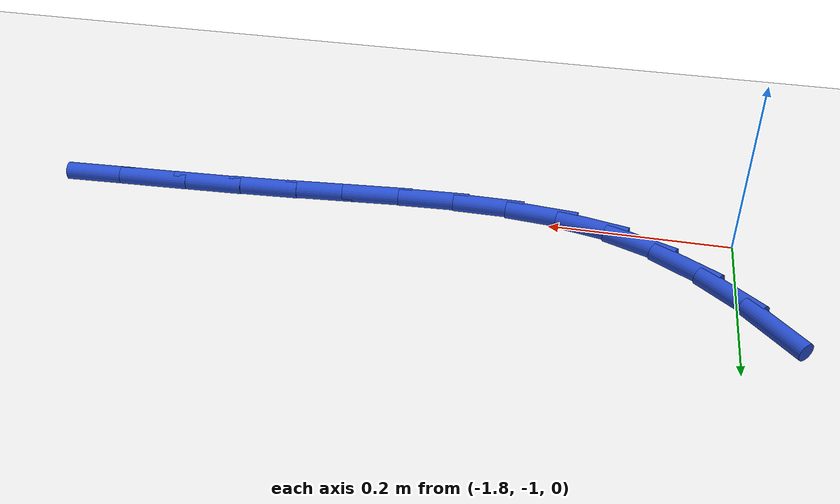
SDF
<sdf version="1.6">
 <world name="default">
  <model name="ground_plane">
   <static>1</static>
   <link name="link">
    <collision name="collision">
     <geometry><plane><normal>0 0 1</normal><size>100 100</size></plane></geometry>
     <surface><friction><ode><mu>100</mu><mu2>50</mu2></ode></friction></surface>
    </collision>
    <visual name="visual">
     <cast_shadows>0</cast_shadows>
     <geometry><plane><normal>0 0 1</normal><size>100 100</size></plane></geometry>
     <material>
      <script><uri>file://media/materials/scripts/gazebo.material</uri><name>Gazebo/WhiteGlow</name></script>
     </material>
    </visual>
   </link>
  </model>
  <model name="line">
   <link name="link_71">
    <pose>-1.8329695515006943 -0.8631183246832941 0.01 0 1.57 -0.8247074986086614</pose>
    <collision name="collision">
     <geometry><cylinder><radius>0.01</radius><length>0.08</length></cylinder></geometry>
    </collision>
    <visual name="visual">
     <material>
      <script><name>Gazebo/Blue</name><uri>file://media/materials/scripts/gazebo.material</uri></script>
     </material>
     <geometry><cylinder><radius>0.01</radius><length>0.08</length></cylinder></geometry>
    </visual>
   </link>
   <link name="link_72">
    <pose>-1.792585848663951 -0.9068086239714721 0.01 0 1.57 -0.6968612964945073</pose>
    <collision name="collision">
     <geometry><cylinder><radius>0.01</radius><length>0.08</length></cylinder></geometry>
    </collision>
    <visual name="visual">
     <material>
      <script><name>Gazebo/Blue</name><uri>file://media/materials/scripts/gazebo.material</uri></script>
     </material>
     <geometry><cylinder><radius>0.01</radius><length>0.08</length></cylinder></geometry>
    </visual>
   </link>
   <link name="link_73">
    <pose>-1.7484557754163177 -0.9437427174831847 0.01 0 1.57 -0.5474824635998187</pose>
    <collision name="collision">
     <geometry><cylinder><radius>0.01</radius><length>0.08</length></cylinder></geometry>
    </collision>
    <visual name="visual">
     <material>
      <script><name>Gazebo/Blue</name><uri>file://media/materials/scripts/gazebo.material</uri></script>
     </material>
     <geometry><cylinder><radius>0.01</radius><length>0.08</length></cylinder></geometry>
    </visual>
   </link>
   <link name="link_74">
    <pose>-1.7002792952798385 -0.9731133482183023 0.01 0 1.57 -0.3804237073944869</pose>
    <collision name="collision">
     <geometry><cylinder><radius>0.01</radius><length>0.08</length></cylinder></geometry>
    </collision>
    <visual name="visual">
     <material>
      <script><name>Gazebo/Blue</name><uri>file://media/materials/scripts/gazebo.material</uri></script>
     </material>
     <geometry><cylinder><radius>0.01</radius><length>0.08</length></cylinder></geometry>
    </visual>
   </link>
   <link name="link_75">
    <pose>-1.6477579754325635 -0.9941168396934206 0.01 0 1.57 -0.21736830765524412</pose>
    <collision name="collision">
     <geometry><cylinder><radius>0.01</radius><length>0.08</length></cylinder></geometry>
    </collision>
    <visual name="visual">
     <material>
      <script><name>Gazebo/Blue</name><uri>file://media/materials/scripts/gazebo.material</uri></script>
     </material>
     <geometry><cylinder><radius>0.01</radius><length>0.08</length></cylinder></geometry>
    </visual>
   </link>
   <link name="link_76">
    <pose>-1.5909164080947709 -1.0066707402803283 0.01 0 1.57 -0.0926235400497027</pose>
    <collision name="collision">
     <geometry><cylinder><radius>0.01</radius><length>0.08</length></cylinder></geometry>
    </collision>
    <visual name="visual">
     <material>
      <script><name>Gazebo/Blue</name><uri>file://media/materials/scripts/gazebo.material</uri></script>
     </material>
     <geometry><cylinder><radius>0.01</radius><length>0.08</length></cylinder></geometry>
    </visual>
   </link>
   <link name="link_77">
    <pose>-1.5304917456787186 -1.0122835465872728 0.01 0 1.57 -0.0062156532643986954</pose>
    <collision name="collision">
     <geometry><cylinder><radius>0.01</radius><length>0.08</length></cylinder></geometry>
    </collision>
    <visual name="visual">
     <material>
      <script><name>Gazebo/Blue</name><uri>file://media/materials/scripts/gazebo.material</uri></script>
     </material>
     <geometry><cylinder><radius>0.01</radius><length>0.08</length></cylinder></geometry>
    </visual>
   </link>
   <link name="link_78">
    <pose>-1.4673163038728765 -1.0126762282853763 0.01 0 1.57 0.04768677071315009</pose>
    <collision name="collision">
     <geometry><cylinder><radius>0.01</radius><length>0.08</length></cylinder></geometry>
    </collision>
    <visual name="visual">
     <material>
      <script><name>Gazebo/Blue</name><uri>file://media/materials/scripts/gazebo.material</uri></script>
     </material>
     <geometry><cylinder><radius>0.01</radius><length>0.08</length></cylinder></geometry>
    </visual>
   </link>
   <link name="link_79">
    <pose>-1.4022223983657165 -1.0095697550457592 0.01 0 1.57 0.07367502828484983</pose>
    <collision name="collision">
     <geometry><cylinder><radius>0.01</radius><length>0.08</length></cylinder></geometry>
    </collision>
    <visual name="visual">
     <material>
      <script><name>Gazebo/Blue</name><uri>file://media/materials/scripts/gazebo.material</uri></script>
     </material>
     <geometry><cylinder><radius>0.01</radius><length>0.08</length></cylinder></geometry>
    </visual>
   </link>
   <link name="link_80">
    <pose>-1.3360423448457095 -1.0046850965395433 0.01 0 1.57 0.07425734519563543</pose>
    <collision name="collision">
     <geometry><cylinder><radius>0.01</radius><length>0.08</length></cylinder></geometry>
    </collision>
    <visual name="visual">
     <material>
      <script><name>Gazebo/Blue</name><uri>file://media/materials/scripts/gazebo.material</uri></script>
     </material>
     <geometry><cylinder><radius>0.01</radius><length>0.08</length></cylinder></geometry>
    </visual>
   </link>
   <link name="link_81">
    <pose>-1.2696083167006968 -0.9997427944337941 0.01 0 1.57 0.05736914959398773</pose>
    <collision name="collision">
     <geometry><cylinder><radius>0.01</radius><length>0.08</length></cylinder></geometry>
    </collision>
    <visual name="visual">
     <material>
      <script><name>Gazebo/Blue</name><uri>file://media/materials/scripts/gazebo.material</uri></script>
     </material>
     <geometry><cylinder><radius>0.01</radius><length>0.08</length></cylinder></geometry>
    </visual>
   </link>
   <link name="link_82">
    <pose>-1.2035820514447337 -0.995950762696066 0.01 0 1.57 0.04488612049352254</pose>
    <collision name="collision">
     <geometry><cylinder><radius>0.01</radius><length>0.08</length></cylinder></geometry>
    </collision>
    <visual name="visual">
     <material>
      <script><name>Gazebo/Blue</name><uri>file://media/materials/scripts/gazebo.material</uri></script>
     </material>
     <geometry><cylinder><radius>0.01</radius><length>0.08</length></cylinder></geometry>
    </visual>
   </link>
   <link name="link_83">
    <pose>-1.138124491755983 -0.9930106519765034 0.01 0 1.57 0.04104164369103476</pose>
    <collision name="collision">
     <geometry><cylinder><radius>0.01</radius><length>0.08</length></cylinder></geometry>
    </collision>
    <visual name="visual">
     <material>
      <script><name>Gazebo/Blue</name><uri>file://media/materials/scripts/gazebo.material</uri></script>
     </material>
     <geometry><cylinder><radius>0.01</radius><length>0.08</length></cylinder></geometry>
    </visual>
   </link>
   <link name="link_84">
    <pose>-1.0733050661113228 -0.9903488615158123 0.01 0 1.57 0.04609095016069665</pose>
    <collision name="collision">
     <geometry><cylinder><radius>0.01</radius><length>0.08</length></cylinder></geometry>
    </collision>
    <visual name="visual">
     <material>
      <script><name>Gazebo/Blue</name><uri>file://media/materials/scripts/gazebo.material</uri></script>
     </material>
     <geometry><cylinder><radius>0.01</radius><length>0.08</length></cylinder></geometry>
    </visual>
   </link>
  </model>
 </world>
</sdf>
